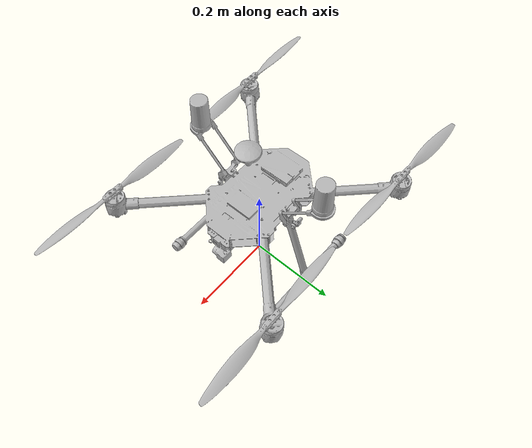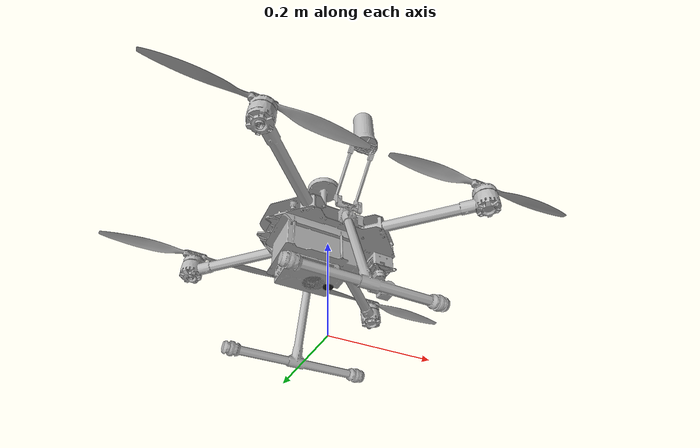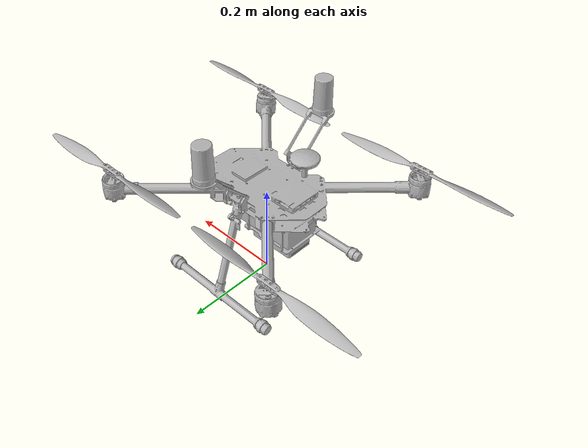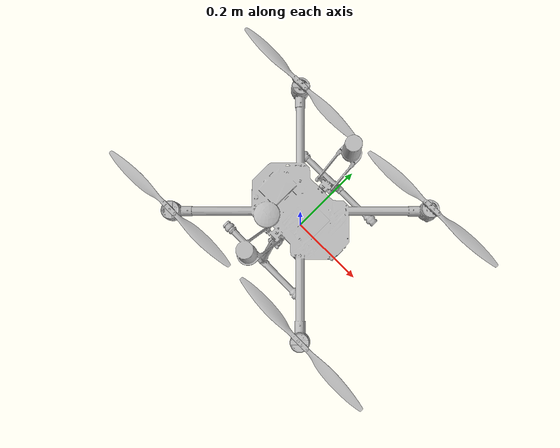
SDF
<?xml version='1.0'?>
<sdf version='1.6'>
  <model name='p600_uav1'>
    <!-- p600 body -->
    <link name='base_link'>
      <pose>0 0 0 0 0 0</pose>
      <inertial>
        <pose>0 0 0 0 0 0</pose>
        <mass>1.47</mass>
        <inertia>
          <ixx>0.011</ixx>
          <ixy>0</ixy>
          <ixz>0</ixz>
          <iyy>0.015</iyy>
          <iyz>0</iyz>
          <izz>0.021</izz>
        </inertia>
      </inertial>
      <collision name='base_link_inertia_collision'>
        <pose>0 0 0 0 0 0</pose>
        <geometry>
          <box>
						<size>0.30 0.30 0.09</size>
          </box>
        </geometry>
        <surface>
          <contact>
            <ode>
              <min_depth>0.001</min_depth>
              <max_vel>0</max_vel>
            </ode>
          </contact>
          <friction>
            <ode/>
          </friction>
        </surface>
      </collision>
      <visual name='base_link_inertia_visual'>
        <pose>0 0 0 0 0 0</pose>
        <geometry>
          <mesh>
            <scale>1 1 1</scale>
            <uri>model://p600/meshes/p600.stl</uri>
          </mesh>
        </geometry>
      </visual>
      <gravity>1</gravity>
      <velocity_decay/>
      <self_collide>0</self_collide>
    </link>
    <link name='imu_link'>
      <pose>0 0 0 0 0 0</pose>
      <inertial>
        <pose>0 0 0 0 0 0</pose>
        <mass>0.015</mass>
        <inertia>
          <ixx>1e-05</ixx>
          <ixy>0</ixy>
          <ixz>0</ixz>
          <iyy>1e-05</iyy>
          <iyz>0</iyz>
          <izz>1e-05</izz>
        </inertia>
      </inertial>
    </link>
    <joint name='imu_joint' type='revolute'>
      <child>imu_link</child>
      <parent>base_link</parent>
      <axis>
        <xyz>1 0 0</xyz>
        <limit>
          <lower>0</lower>
          <upper>0</upper>
          <effort>0</effort>
          <velocity>0</velocity>
        </limit>
        <dynamics>
          <spring_reference>0</spring_reference>
          <spring_stiffness>0</spring_stiffness>
        </dynamics>
        <use_parent_model_frame>1</use_parent_model_frame>
      </axis>
    </joint>
    <link name='rotor_0'>
			<pose>0.212132 -0.212132 0.243 0 0 0</pose>
      <inertial>
        <pose>0 0 0 0 0 0</pose>
        <mass>0.005</mass>
        <inertia>
          <ixx>9.75e-07</ixx>
          <ixy>0</ixy>
          <ixz>0</ixz>
          <iyy>0.000273104</iyy>
          <iyz>0</iyz>
          <izz>0.000274004</izz>
        </inertia>
      </inertial>
      <collision name='rotor_0_collision'>
        <pose>0 0 0 0 0 0</pose>
        <geometry>
          <cylinder>
            <length>0.005</length>
            <radius>0.128</radius>
          </cylinder>
        </geometry>
        <surface>
          <contact>
            <ode/>
          </contact>
          <friction>
            <ode/>
          </friction>
        </surface>
      </collision>
      <visual name='rotor_0_visual'>
        <pose>0 0 0 0 0 0</pose>
        <geometry>
          <mesh>
            <scale>1 1 1</scale>
            <uri>model://p600/meshes/p600_ccw.stl</uri>
          </mesh>
        </geometry>

      </visual>
      <gravity>1</gravity>
      <velocity_decay/>
      <self_collide>0</self_collide>
    </link>
    <joint name='rotor_0_joint' type='revolute'>
      <child>rotor_0</child>
      <parent>base_link</parent>
      <axis>
        <xyz>0 0 1</xyz>
        <limit>
          <lower>-1e+16</lower>
          <upper>1e+16</upper>
        </limit>
        <dynamics>
          <spring_reference>0</spring_reference>
          <spring_stiffness>0</spring_stiffness>
        </dynamics>
        <use_parent_model_frame>1</use_parent_model_frame>
      </axis>
    </joint>
    <link name='rotor_1'>
			<pose>-0.212132 0.212132 0.243 0 0 0</pose>
      <inertial>
        <pose>0 0 0 0 0 0</pose>
        <mass>0.005</mass>
        <inertia>
          <ixx>9.75e-07</ixx>
          <ixy>0</ixy>
          <ixz>0</ixz>
          <iyy>0.000273104</iyy>
          <iyz>0</iyz>
          <izz>0.000274004</izz>
        </inertia>
      </inertial>
      <collision name='rotor_1_collision'>
        <pose>0 0 0 0 0 0</pose>
        <geometry>
          <cylinder>
            <length>0.005</length>
            <radius>0.128</radius>
          </cylinder>
        </geometry>
        <surface>
          <contact>
            <ode/>
          </contact>
          <friction>
            <ode/>
          </friction>
        </surface>
      </collision>
      <visual name='rotor_1_visual'>
        <pose>0 0 0 0 0 0</pose>
        <geometry>
          <mesh>
            <scale>1 1 1</scale>
            <uri>model://p600/meshes/p600_ccw.stl</uri>
          </mesh>
        </geometry>

      </visual>
      <gravity>1</gravity>
      <velocity_decay/>
      <self_collide>0</self_collide>
    </link>
    <joint name='rotor_1_joint' type='revolute'>
      <child>rotor_1</child>
      <parent>base_link</parent>
      <axis>
        <xyz>0 0 1</xyz>
        <limit>
          <lower>-1e+16</lower>
          <upper>1e+16</upper>
        </limit>
        <dynamics>
          <spring_reference>0</spring_reference>
          <spring_stiffness>0</spring_stiffness>
        </dynamics>
        <use_parent_model_frame>1</use_parent_model_frame>
      </axis>
    </joint>
    <link name='rotor_2'>
			<pose>0.212132 0.212132 0.243 0 0 0</pose>
      <inertial>
        <pose>0 0 0 0 0 0</pose>
        <mass>0.005</mass>
        <inertia>
          <ixx>9.75e-07</ixx>
          <ixy>0</ixy>
          <ixz>0</ixz>
          <iyy>0.000273104</iyy>
          <iyz>0</iyz>
          <izz>0.000274004</izz>
        </inertia>
      </inertial>
      <collision name='rotor_2_collision'>
        <pose>0 0 0 0 0 0</pose>
        <geometry>
          <cylinder>
            <length>0.005</length>
            <radius>0.128</radius>
          </cylinder>
        </geometry>
        <surface>
          <contact>
            <ode/>
          </contact>
          <friction>
            <ode/>
          </friction>
        </surface>
      </collision>
      <visual name='rotor_2_visual'>
        <pose>0 0 0 0 0 0</pose>
        <geometry>
          <mesh>
            <scale>1 1 1</scale>
            <uri>model://p600/meshes/p600_cw.stl</uri>
          </mesh>
        </geometry>
      </visual>
      <gravity>1</gravity>
      <velocity_decay/>
      <self_collide>0</self_collide>
    </link>
    <joint name='rotor_2_joint' type='revolute'>
      <child>rotor_2</child>
      <parent>base_link</parent>
      <axis>
        <xyz>0 0 1</xyz>
        <limit>
          <lower>-1e+16</lower>
          <upper>1e+16</upper>
        </limit>
        <dynamics>
          <spring_reference>0</spring_reference>
          <spring_stiffness>0</spring_stiffness>
        </dynamics>
        <use_parent_model_frame>1</use_parent_model_frame>
      </axis>
    </joint>
    <link name='rotor_3'>
			<pose>-0.212132 -0.212132 0.243 0 0 0</pose>
      <inertial>
        <pose>0 0 0 0 0 0</pose>
        <mass>0.005</mass>
        <inertia>
          <ixx>9.75e-07</ixx>
          <ixy>0</ixy>
          <ixz>0</ixz>
          <iyy>0.000273104</iyy>
          <iyz>0</iyz>
          <izz>0.000274004</izz>
        </inertia>
      </inertial>
      <collision name='rotor_3_collision'>
        <pose>0 0 0 0 0 0</pose>
        <geometry>
          <cylinder>
            <length>0.005</length>
            <radius>0.128</radius>
          </cylinder>
        </geometry>
        <surface>
          <contact>
            <ode/>
          </contact>
          <friction>
            <ode/>
          </friction>
        </surface>
      </collision>
      <visual name='rotor_3_visual'>
        <pose>0 0 0 0 0 0</pose>
        <geometry>
          <mesh>
            <scale>1 1 1</scale>
            <uri>model://p600/meshes/p600_cw.stl</uri>
          </mesh>
        </geometry>

      </visual>
      <gravity>1</gravity>
      <velocity_decay/>
      <self_collide>0</self_collide>
    </link>
    <joint name='rotor_3_joint' type='revolute'>
      <child>rotor_3</child>
      <parent>base_link</parent>
      <axis>
        <xyz>0 0 1</xyz>
        <limit>
          <lower>-1e+16</lower>
          <upper>1e+16</upper>
        </limit>
        <dynamics>
          <spring_reference>0</spring_reference>
          <spring_stiffness>0</spring_stiffness>
        </dynamics>
        <use_parent_model_frame>1</use_parent_model_frame>
      </axis>
    </joint>
    <include>
      <uri>model://gps</uri>
      <pose>0.0 0 0.1 0 0 0</pose>
      <name>gps</name>
    </include>
    <joint name='gps_joint' type='fixed'>
      <child>gps::link</child>
      <parent>base_link</parent>
    </joint>
    <plugin name='rosbag' filename='libgazebo_multirotor_base_plugin.so'>
      <robotNamespace></robotNamespace>
      <linkName>base_link</linkName>
      <rotorVelocitySlowdownSim>10</rotorVelocitySlowdownSim>
    </plugin>
    <plugin name='front_right_motor_model' filename='libgazebo_motor_model.so'>
      <robotNamespace></robotNamespace>
      <jointName>rotor_0_joint</jointName>
      <linkName>rotor_0</linkName>
      <turningDirection>ccw</turningDirection>
      <timeConstantUp>0.0125</timeConstantUp>
      <timeConstantDown>0.025</timeConstantDown>
      <maxRotVelocity>1500</maxRotVelocity>
      <motorConstant>8.54858e-06</motorConstant>
      <momentConstant>0.06</momentConstant>
      <commandSubTopic>/gazebo/command/motor_speed</commandSubTopic>
      <motorNumber>0</motorNumber>
      <rotorDragCoefficient>0.000806428</rotorDragCoefficient>
      <rollingMomentCoefficient>1e-06</rollingMomentCoefficient>
      <motorSpeedPubTopic>/motor_speed/0</motorSpeedPubTopic>
      <rotorVelocitySlowdownSim>10</rotorVelocitySlowdownSim>
    </plugin>
    <plugin name='back_left_motor_model' filename='libgazebo_motor_model.so'>
      <robotNamespace></robotNamespace>
      <jointName>rotor_1_joint</jointName>
      <linkName>rotor_1</linkName>
      <turningDirection>ccw</turningDirection>
      <timeConstantUp>0.0125</timeConstantUp>
      <timeConstantDown>0.025</timeConstantDown>
      <maxRotVelocity>1500</maxRotVelocity>
      <motorConstant>8.54858e-06</motorConstant>
      <momentConstant>0.06</momentConstant>
      <commandSubTopic>/gazebo/command/motor_speed</commandSubTopic>
      <motorNumber>1</motorNumber>
      <rotorDragCoefficient>0.000806428</rotorDragCoefficient>
      <rollingMomentCoefficient>1e-06</rollingMomentCoefficient>
      <motorSpeedPubTopic>/motor_speed/1</motorSpeedPubTopic>
      <rotorVelocitySlowdownSim>10</rotorVelocitySlowdownSim>
    </plugin>
    <plugin name='front_left_motor_model' filename='libgazebo_motor_model.so'>
      <robotNamespace></robotNamespace>
      <jointName>rotor_2_joint</jointName>
      <linkName>rotor_2</linkName>
      <turningDirection>cw</turningDirection>
      <timeConstantUp>0.0125</timeConstantUp>
      <timeConstantDown>0.025</timeConstantDown>
      <maxRotVelocity>1500</maxRotVelocity>
      <motorConstant>8.54858e-06</motorConstant>
      <momentConstant>0.06</momentConstant>
      <commandSubTopic>/gazebo/command/motor_speed</commandSubTopic>
      <motorNumber>2</motorNumber>
      <rotorDragCoefficient>0.000806428</rotorDragCoefficient>
      <rollingMomentCoefficient>1e-06</rollingMomentCoefficient>
      <motorSpeedPubTopic>/motor_speed/2</motorSpeedPubTopic>
      <rotorVelocitySlowdownSim>10</rotorVelocitySlowdownSim>
    </plugin>
    <plugin name='back_right_motor_model' filename='libgazebo_motor_model.so'>
      <robotNamespace></robotNamespace>
      <jointName>rotor_3_joint</jointName>
      <linkName>rotor_3</linkName>
      <turningDirection>cw</turningDirection>
      <timeConstantUp>0.0125</timeConstantUp>
      <timeConstantDown>0.025</timeConstantDown>
      <maxRotVelocity>1500</maxRotVelocity>
      <motorConstant>8.54858e-06</motorConstant>
      <momentConstant>0.06</momentConstant>
      <commandSubTopic>/gazebo/command/motor_speed</commandSubTopic>
      <motorNumber>3</motorNumber>
      <rotorDragCoefficient>0.000806428</rotorDragCoefficient>
      <rollingMomentCoefficient>1e-06</rollingMomentCoefficient>
      <motorSpeedPubTopic>/motor_speed/3</motorSpeedPubTopic>
      <rotorVelocitySlowdownSim>10</rotorVelocitySlowdownSim>
    </plugin>
    <plugin name='groundtruth_plugin' filename='libgazebo_groundtruth_plugin.so'>
      <robotNamespace/>
    </plugin>
    <plugin name='magnetometer_plugin' filename='libgazebo_magnetometer_plugin.so'>
      <robotNamespace/>
      <pubRate>100</pubRate>
      <noiseDensity>0.0004</noiseDensity>
      <randomWalk>6.4e-06</randomWalk>
      <biasCorrelationTime>600</biasCorrelationTime>
      <magTopic>/mag</magTopic>
    </plugin>
    <plugin name='barometer_plugin' filename='libgazebo_barometer_plugin.so'>
      <robotNamespace/>
      <pubRate>50</pubRate>
      <baroTopic>/baro</baroTopic>
    </plugin>
    <plugin name='mavlink_interface' filename='libgazebo_mavlink_interface.so'>
      <robotNamespace/>
      <imuSubTopic>/imu</imuSubTopic>
      <gpsSubTopic>/gps</gpsSubTopic>
      <magSubTopic>/mag</magSubTopic>
      <baroSubTopic>/baro</baroSubTopic>
      <mavlink_addr>INADDR_ANY</mavlink_addr>
      <mavlink_tcp_port>4560</mavlink_tcp_port>
      <serialEnabled>false</serialEnabled>
      <serialDevice>/dev/ttyACM0</serialDevice>
      <baudRate>921600</baudRate>
      <qgc_addr>INADDR_ANY</qgc_addr>
      <qgc_udp_port>14550</qgc_udp_port>
      <hil_mode>false</hil_mode>
      <hil_state_level>false</hil_state_level>
      <enable_lockstep>true</enable_lockstep>
      <use_tcp>true</use_tcp>
      <motorSpeedCommandPubTopic>/gazebo/command/motor_speed</motorSpeedCommandPubTopic>
      <control_channels>
        <channel name='rotor1'>
          <input_index>0</input_index>
          <input_offset>0</input_offset>
          <input_scaling>1200</input_scaling>
          <zero_position_disarmed>0</zero_position_disarmed>
          <zero_position_armed>100</zero_position_armed>
          <joint_control_type>velocity</joint_control_type>
        </channel>
        <channel name='rotor2'>
          <input_index>1</input_index>
          <input_offset>0</input_offset>
          <input_scaling>1200</input_scaling>
          <zero_position_disarmed>0</zero_position_disarmed>
          <zero_position_armed>100</zero_position_armed>
          <joint_control_type>velocity</joint_control_type>
        </channel>
        <channel name='rotor3'>
          <input_index>2</input_index>
          <input_offset>0</input_offset>
          <input_scaling>1200</input_scaling>
          <zero_position_disarmed>0</zero_position_disarmed>
          <zero_position_armed>100</zero_position_armed>
          <joint_control_type>velocity</joint_control_type>
        </channel>
        <channel name='rotor4'>
          <input_index>3</input_index>
          <input_offset>0</input_offset>
          <input_scaling>1200</input_scaling>
          <zero_position_disarmed>0</zero_position_disarmed>
          <zero_position_armed>100</zero_position_armed>
          <joint_control_type>velocity</joint_control_type>
        </channel>
      </control_channels>
    </plugin>
    <static>0</static>
    <plugin name='gazebo_imu_plugin' filename='libgazebo_imu_plugin.so'>
      <robotNamespace></robotNamespace>
      <linkName>imu_link</linkName>
      <imuTopic>/imu</imuTopic>
      <gyroscopeNoiseDensity>0.0003394</gyroscopeNoiseDensity>
      <gyroscopeRandomWalk>3.8785e-05</gyroscopeRandomWalk>
      <gyroscopeBiasCorrelationTime>1000.0</gyroscopeBiasCorrelationTime>
      <gyroscopeTurnOnBiasSigma>0.0087</gyroscopeTurnOnBiasSigma>
      <accelerometerNoiseDensity>0.004</accelerometerNoiseDensity>
      <accelerometerRandomWalk>0.006</accelerometerRandomWalk>
      <accelerometerBiasCorrelationTime>300.0</accelerometerBiasCorrelationTime>
      <accelerometerTurnOnBiasSigma>0.196</accelerometerTurnOnBiasSigma>
    </plugin>

    <plugin name="p3d_base_controller" filename="libgazebo_ros_p3d.so">
      <alwaysOn>true</alwaysOn>
      <updateRate>50.0</updateRate>
      <bodyName>base_link</bodyName>
      <!-- 默认是1号机 -->
      <topicName>/uav1/prometheus/ground_truth</topicName>
      <gaussianNoise>0.00</gaussianNoise>
      <frameName>world</frameName>
      <xyzOffsets>0 0 0</xyzOffsets>
      <rpyOffsets>0 0 0</rpyOffsets>
    </plugin>

  </model>
</sdf>

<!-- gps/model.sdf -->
<sdf version="1.6">
  <model name="gps">
    <link name="link">
      <pose>0 0 0 0 0 0</pose>
      <inertial>
        <pose>0 0 0 0 0 0</pose>
        <mass>0.015</mass>
        <inertia>
          <ixx>1e-05</ixx>
          <ixy>0</ixy>
          <ixz>0</ixz>
          <iyy>1e-05</iyy>
          <iyz>0</iyz>
          <izz>1e-05</izz>
        </inertia>
      </inertial>
      <visual name="visual">
        <geometry>
          <cylinder>
            <radius>0.01</radius>
            <length>0.002</length>
          </cylinder>
        </geometry>
        <material>
          <script>
            <name>Gazebo/Black</name>
            <uri>file://usr/share/gz/gz-sim8/media/gazebo.material</uri>
          </script>
        </material>
      </visual>
      <sensor name="gps" type="gps">
        <pose>0 0 0 0 0 0</pose>
        <update_rate>5.0</update_rate>
        <always_on>true</always_on>
        <visualize>false</visualize>
        <!-- GpsSensor noise currently not used -->
        <plugin name="gps_plugin" filename="libgazebo_gps_plugin.so">
          <robotNamespace></robotNamespace>
          <gpsNoise>true</gpsNoise>
          <gpsXYRandomWalk>2.0</gpsXYRandomWalk>
          <gpsZRandomWalk>4.0</gpsZRandomWalk>
          <gpsXYNoiseDensity>2.0e-4</gpsXYNoiseDensity>
          <gpsZNoiseDensity>4.0e-4</gpsZNoiseDensity>
          <gpsVXYNoiseDensity>0.2</gpsVXYNoiseDensity>
          <gpsVZNoiseDensity>0.4</gpsVZNoiseDensity>
        </plugin>
      </sensor>
    </link>
  </model>
</sdf>
